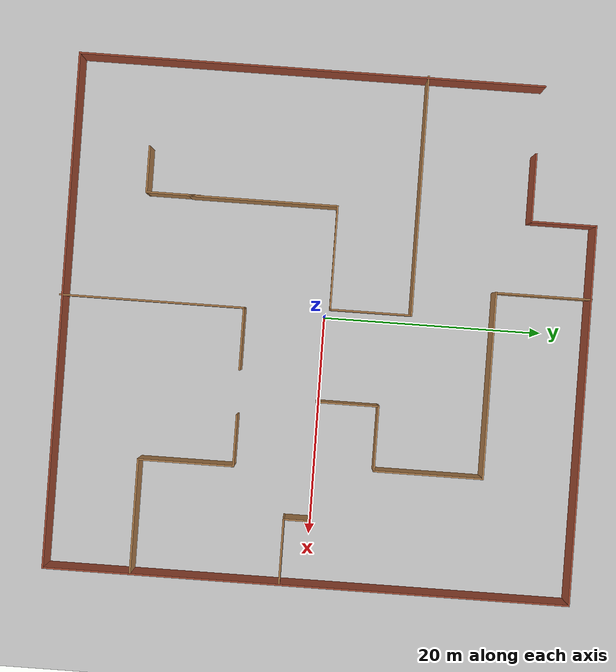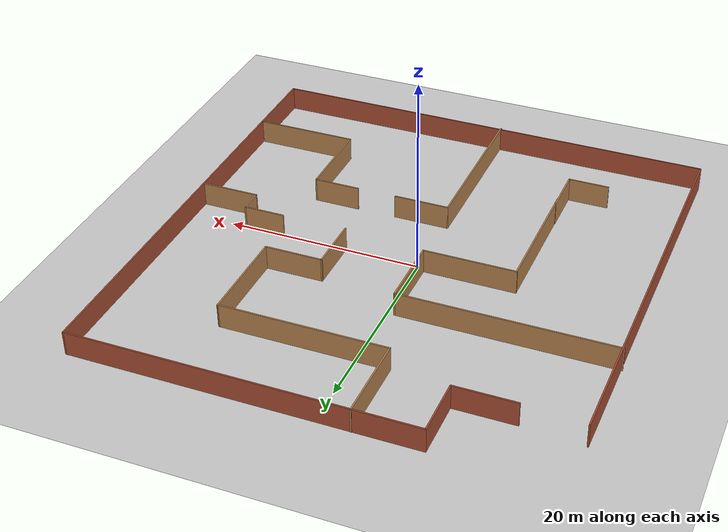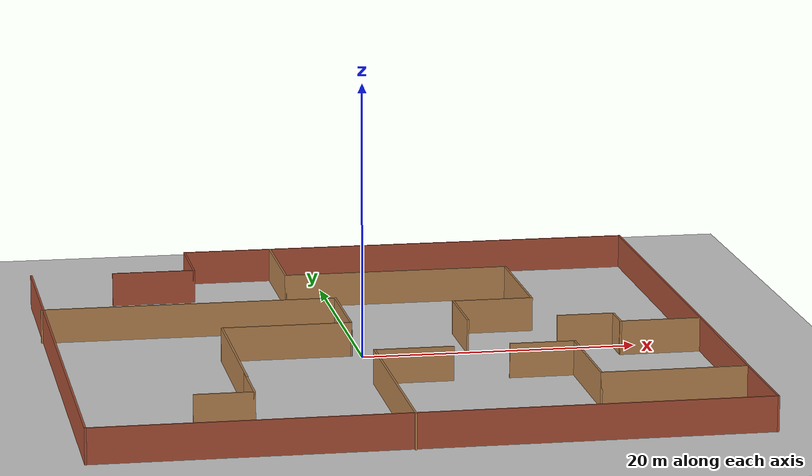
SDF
<sdf version="1.4">
 <world name="default">
  <include><uri>model://ground_plane</uri></include>
  <include><uri>model://sun</uri></include>
  <include>
   <pose>1 0 0  0 0 0</pose>
   <uri>model:///home/mathias/catkin_yolo/src/heat_map/worlds/chosen_map</uri>
  </include>
 </world>
</sdf>

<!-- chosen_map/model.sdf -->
<sdf version='1.6'>
  <model name='chosen_map'>
    <pose frame=''>7.96843 -0.244102 0 0 -0 0</pose>
    <link name='Wall_23'>
      <collision name='Wall_23_Collision'>
        <geometry>
          <box>
            <size>42.25 0.15 2.5</size>
          </box>
        </geometry>
        <pose frame=''>0 0 1.25 0 -0 0</pose>
      </collision>
      <visual name='Wall_23_Visual'>
        <pose frame=''>0 0 1.25 0 -0 0</pose>
        <geometry>
          <box>
            <size>42.25 0.15 2.5</size>
          </box>
        </geometry>
        <material>
          <script>
            <uri>file://media/materials/scripts/gazebo.material</uri>
            <name>Gazebo/Bricks</name>
          </script>
          <ambient>1 1 1 1</ambient>
        </material>
        <meta>
          <layer>0</layer>
        </meta>
      </visual>
      <pose frame=''>-23.2389 -2.67673 0 0 -0 -1.5708</pose>
    </link>
    <link name='Wall_24'>
      <collision name='Wall_24_Collision'>
        <geometry>
          <box>
            <size>46.75 0.15 2.5</size>
          </box>
        </geometry>
        <pose frame=''>0 0 1.25 0 -0 0</pose>
      </collision>
      <visual name='Wall_24_Visual'>
        <pose frame=''>0 0 1.25 0 -0 0</pose>
        <geometry>
          <box>
            <size>46.75 0.15 2.5</size>
          </box>
        </geometry>
        <material>
          <script>
            <uri>file://media/materials/scripts/gazebo.material</uri>
            <name>Gazebo/Bricks</name>
          </script>
          <ambient>1 1 1 1</ambient>
        </material>
        <meta>
          <layer>0</layer>
        </meta>
      </visual>
      <pose frame=''>0.061133 -23.7267 0 0 -0 0</pose>
    </link>
    <link name='Wall_25'>
      <collision name='Wall_25_Collision'>
        <geometry>
          <box>
            <size>47.75 0.15 2.5</size>
          </box>
        </geometry>
        <pose frame=''>0 0 1.25 0 -0 0</pose>
      </collision>
      <visual name='Wall_25_Visual'>
        <pose frame=''>0 0 1.25 0 -0 0</pose>
        <geometry>
          <box>
            <size>47.75 0.15 2.5</size>
          </box>
        </geometry>
        <material>
          <script>
            <uri>file://media/materials/scripts/gazebo.material</uri>
            <name>Gazebo/Bricks</name>
          </script>
          <ambient>1 1 1 1</ambient>
        </material>
        <meta>
          <layer>0</layer>
        </meta>
      </visual>
      <pose frame=''>23.3611 0.073269 0 0 -0 1.5708</pose>
    </link>
    <link name='Wall_26'>
      <collision name='Wall_26_Collision'>
        <geometry>
          <box>
            <size>34.5 0.15 2.5</size>
          </box>
        </geometry>
        <pose frame=''>0 0 1.25 0 -0 0</pose>
      </collision>
      <visual name='Wall_26_Visual'>
        <pose frame=''>0 0 1.25 0 -0 0</pose>
        <geometry>
          <box>
            <size>34.5 0.15 2.5</size>
          </box>
        </geometry>
        <material>
          <script>
            <uri>file://media/materials/scripts/gazebo.material</uri>
            <name>Gazebo/Bricks</name>
          </script>
          <ambient>1 1 1 1</ambient>
        </material>
        <meta>
          <layer>0</layer>
        </meta>
      </visual>
      <pose frame=''>6.18613 23.8733 0 0 -0 3.14159</pose>
    </link>
    <link name='Wall_27'>
      <collision name='Wall_27_Collision'>
        <geometry>
          <box>
            <size>6 0.15 2.5</size>
          </box>
        </geometry>
        <pose frame=''>0 0 1.25 0 -0 0</pose>
      </collision>
      <visual name='Wall_27_Visual'>
        <pose frame=''>0 0 1.25 0 -0 0</pose>
        <geometry>
          <box>
            <size>6 0.15 2.5</size>
          </box>
        </geometry>
        <material>
          <script>
            <uri>file://media/materials/scripts/gazebo.material</uri>
            <name>Gazebo/Bricks</name>
          </script>
          <ambient>1 1 1 1</ambient>
        </material>
        <meta>
          <layer>0</layer>
        </meta>
      </visual>
      <pose frame=''>-10.9889 20.9483 0 0 -0 -1.5708</pose>
    </link>
    <link name='Wall_28'>
      <collision name='Wall_28_Collision'>
        <geometry>
          <box>
            <size>6.25 0.15 2.5</size>
          </box>
        </geometry>
        <pose frame=''>0 0 1.25 0 -0 0</pose>
      </collision>
      <visual name='Wall_28_Visual'>
        <pose frame=''>0 0 1.25 0 -0 0</pose>
        <geometry>
          <box>
            <size>6.25 0.15 2.5</size>
          </box>
        </geometry>
        <material>
          <script>
            <uri>file://media/materials/scripts/gazebo.material</uri>
            <name>Gazebo/Bricks</name>
          </script>
          <ambient>1 1 1 1</ambient>
        </material>
        <meta>
          <layer>0</layer>
        </meta>
      </visual>
      <pose frame=''>-14.0389 18.0233 0 0 -0 3.14159</pose>
    </link>
    <link name='Wall_30'>
      <collision name='Wall_30_Collision'>
        <geometry>
          <box>
            <size>21.75 0.15 2.5</size>
          </box>
        </geometry>
        <pose frame=''>0 0 1.25 0 -0 0</pose>
      </collision>
      <visual name='Wall_30_Visual'>
        <pose frame=''>0 0 1.25 0 -0 0</pose>
        <geometry>
          <box>
            <size>21.75 0.15 2.5</size>
          </box>
        </geometry>
        <material>
          <script>
            <uri>file://media/materials/scripts/gazebo.material</uri>
            <name>Gazebo/Wood</name>
          </script>
          <ambient>1 1 1 1</ambient>
        </material>
        <meta>
          <layer>0</layer>
        </meta>
      </visual>
      <pose frame=''>-12.5611 7.82006 0 0 -0 0</pose>
    </link>
    <link name='Wall_31'>
      <collision name='Wall_31_Collision'>
        <geometry>
          <box>
            <size>7.5 0.15 2.5</size>
          </box>
        </geometry>
        <pose frame=''>0 0 1.25 0 -0 0</pose>
      </collision>
      <visual name='Wall_31_Visual'>
        <pose frame=''>0 0 1.25 0 -0 0</pose>
        <geometry>
          <box>
            <size>7.5 0.15 2.5</size>
          </box>
        </geometry>
        <material>
          <script>
            <uri>file://media/materials/scripts/gazebo.material</uri>
            <name>Gazebo/Wood</name>
          </script>
          <ambient>1 1 1 1</ambient>
        </material>
        <meta>
          <layer>0</layer>
        </meta>
      </visual>
      <pose frame=''>-1.76114 4.14506 0 0 -0 -1.5708</pose>
    </link>
    <link name='Wall_32'>
      <collision name='Wall_32_Collision'>
        <geometry>
          <box>
            <size>9.5 0.15 2.5</size>
          </box>
        </geometry>
        <pose frame=''>0 0 1.25 0 -0 0</pose>
      </collision>
      <visual name='Wall_32_Visual'>
        <pose frame=''>0 0 1.25 0 -0 0</pose>
        <geometry>
          <box>
            <size>9.5 0.15 2.5</size>
          </box>
        </geometry>
        <material>
          <script>
            <uri>file://media/materials/scripts/gazebo.material</uri>
            <name>Gazebo/Wood</name>
          </script>
          <ambient>1 1 1 1</ambient>
        </material>
        <meta>
          <layer>0</layer>
        </meta>
      </visual>
      <pose frame=''>-6.43614 0.470065 0 0 -0 3.14159</pose>
    </link>
    <link name='Wall_33'>
      <collision name='Wall_33_Collision'>
        <geometry>
          <box>
            <size>13.5 0.15 2.5</size>
          </box>
        </geometry>
        <pose frame=''>0 0 1.25 0 -0 0</pose>
      </collision>
      <visual name='Wall_33_Visual'>
        <pose frame=''>0 0 1.25 0 -0 0</pose>
        <geometry>
          <box>
            <size>13.5 0.15 2.5</size>
          </box>
        </geometry>
        <material>
          <script>
            <uri>file://media/materials/scripts/gazebo.material</uri>
            <name>Gazebo/Wood</name>
          </script>
          <ambient>1 1 1 1</ambient>
        </material>
        <meta>
          <layer>0</layer>
        </meta>
      </visual>
      <pose frame=''>-11.1111 -6.20493 0 0 -0 -1.5708</pose>
    </link>
    <link name='Wall_35'>
      <collision name='Wall_35_Collision'>
        <geometry>
          <box>
            <size>16.75 0.15 2.5</size>
          </box>
        </geometry>
        <pose frame=''>0 0 1.25 0 -0 0</pose>
      </collision>
      <visual name='Wall_35_Visual'>
        <pose frame=''>0 0 1.25 0 -0 0</pose>
        <geometry>
          <box>
            <size>16.75 0.15 2.5</size>
          </box>
        </geometry>
        <material>
          <script>
            <uri>file://media/materials/scripts/gazebo.material</uri>
            <name>Gazebo/Wood</name>
          </script>
          <ambient>1 1 1 1</ambient>
        </material>
        <meta>
          <layer>0</layer>
        </meta>
      </visual>
      <pose frame=''>-1.35976 -15.6092 0 0 -0 1.5708</pose>
    </link>
    <link name='Wall_36'>
      <collision name='Wall_36_Collision'>
        <geometry>
          <box>
            <size>5.75 0.15 2.5</size>
          </box>
        </geometry>
        <pose frame=''>0 0 1.25 0 -0 0</pose>
      </collision>
      <visual name='Wall_36_Visual'>
        <pose frame=''>0 0 1.25 0 -0 0</pose>
        <geometry>
          <box>
            <size>5.75 0.15 2.5</size>
          </box>
        </geometry>
        <material>
          <script>
            <uri>file://media/materials/scripts/gazebo.material</uri>
            <name>Gazebo/Wood</name>
          </script>
          <ambient>1 1 1 1</ambient>
        </material>
        <meta>
          <layer>0</layer>
        </meta>
      </visual>
      <pose frame=''>1.44024 -7.3092 0 0 -0 0</pose>
    </link>
    <link name='Wall_38'>
      <collision name='Wall_38_Collision'>
        <geometry>
          <box>
            <size>4.75 0.15 2.5</size>
          </box>
        </geometry>
        <pose frame=''>0 0 1.25 0 -0 0</pose>
      </collision>
      <visual name='Wall_38_Visual'>
        <pose frame=''>0 0 1.25 0 -0 0</pose>
        <geometry>
          <box>
            <size>4.75 0.15 2.5</size>
          </box>
        </geometry>
        <material>
          <script>
            <uri>file://media/materials/scripts/gazebo.material</uri>
            <name>Gazebo/Wood</name>
          </script>
          <ambient>1 1 1 1</ambient>
        </material>
        <meta>
          <layer>0</layer>
        </meta>
      </visual>
      <pose frame=''>10.6804 -7.24275 0 0 -0 0</pose>
    </link>
    <link name='Wall_39'>
      <collision name='Wall_39_Collision'>
        <geometry>
          <box>
            <size>8.75 0.15 2.5</size>
          </box>
        </geometry>
        <pose frame=''>0 0 1.25 0 -0 0</pose>
      </collision>
      <visual name='Wall_39_Visual'>
        <pose frame=''>0 0 1.25 0 -0 0</pose>
        <geometry>
          <box>
            <size>8.75 0.15 2.5</size>
          </box>
        </geometry>
        <material>
          <script>
            <uri>file://media/materials/scripts/gazebo.material</uri>
            <name>Gazebo/Wood</name>
          </script>
          <ambient>1 1 1 1</ambient>
        </material>
        <meta>
          <layer>0</layer>
        </meta>
      </visual>
      <pose frame=''>12.9804 -11.5427 0 0 -0 -1.5708</pose>
    </link>
    <link name='Wall_40'>
      <collision name='Wall_40_Collision'>
        <geometry>
          <box>
            <size>10.5 0.15 2.5</size>
          </box>
        </geometry>
        <pose frame=''>0 0 1.25 0 -0 0</pose>
      </collision>
      <visual name='Wall_40_Visual'>
        <pose frame=''>0 0 1.25 0 -0 0</pose>
        <geometry>
          <box>
            <size>10.5 0.15 2.5</size>
          </box>
        </geometry>
        <material>
          <script>
            <uri>file://media/materials/scripts/gazebo.material</uri>
            <name>Gazebo/Wood</name>
          </script>
          <ambient>1 1 1 1</ambient>
        </material>
        <meta>
          <layer>0</layer>
        </meta>
      </visual>
      <pose frame=''>18.1554 -15.8427 0 0 -0 0</pose>
    </link>
    <link name='Wall_42'>
      <collision name='Wall_42_Collision'>
        <geometry>
          <box>
            <size>8.75 0.15 2.5</size>
          </box>
        </geometry>
        <pose frame=''>0 0 1.25 0 -0 0</pose>
      </collision>
      <visual name='Wall_42_Visual'>
        <pose frame=''>0 0 1.25 0 -0 0</pose>
        <geometry>
          <box>
            <size>8.75 0.15 2.5</size>
          </box>
        </geometry>
        <material>
          <script>
            <uri>file://media/materials/scripts/gazebo.material</uri>
            <name>Gazebo/Wood</name>
          </script>
          <ambient>1 1 1 1</ambient>
        </material>
        <meta>
          <layer>0</layer>
        </meta>
      </visual>
      <pose frame=''>-4.34651 19.6092 0 0 -0 -1.5708</pose>
    </link>
    <link name='Wall_43'>
      <collision name='Wall_43_Collision'>
        <geometry>
          <box>
            <size>17 0.15 2.5</size>
          </box>
        </geometry>
        <pose frame=''>0 0 1.25 0 -0 0</pose>
      </collision>
      <visual name='Wall_43_Visual'>
        <pose frame=''>0 0 1.25 0 -0 0</pose>
        <geometry>
          <box>
            <size>17 0.15 2.5</size>
          </box>
        </geometry>
        <material>
          <script>
            <uri>file://media/materials/scripts/gazebo.material</uri>
            <name>Gazebo/Wood</name>
          </script>
          <ambient>1 1 1 1</ambient>
        </material>
        <meta>
          <layer>0</layer>
        </meta>
      </visual>
      <pose frame=''>4.07849 15.3092 0 0 -0 0</pose>
    </link>
    <link name='Wall_44'>
      <collision name='Wall_44_Collision'>
        <geometry>
          <box>
            <size>10 0.15 2.5</size>
          </box>
        </geometry>
        <pose frame=''>0 0 1.25 0 -0 0</pose>
      </collision>
      <visual name='Wall_44_Visual'>
        <pose frame=''>0 0 1.25 0 -0 0</pose>
        <geometry>
          <box>
            <size>10 0.15 2.5</size>
          </box>
        </geometry>
        <material>
          <script>
            <uri>file://media/materials/scripts/gazebo.material</uri>
            <name>Gazebo/Wood</name>
          </script>
          <ambient>1 1 1 1</ambient>
        </material>
        <meta>
          <layer>0</layer>
        </meta>
      </visual>
      <pose frame=''>12.5035 10.3842 0 0 -0 -1.5708</pose>
    </link>
    <link name='Wall_45'>
      <collision name='Wall_45_Collision'>
        <geometry>
          <box>
            <size>6 0.15 2.5</size>
          </box>
        </geometry>
        <pose frame=''>0 0 1.25 0 -0 0</pose>
      </collision>
      <visual name='Wall_45_Visual'>
        <pose frame=''>0 0 1.25 0 -0 0</pose>
        <geometry>
          <box>
            <size>6 0.15 2.5</size>
          </box>
        </geometry>
        <material>
          <script>
            <uri>file://media/materials/scripts/gazebo.material</uri>
            <name>Gazebo/Wood</name>
          </script>
          <ambient>1 1 1 1</ambient>
        </material>
        <meta>
          <layer>0</layer>
        </meta>
      </visual>
      <pose frame=''>9.57849 5.4592 0 0 -0 3.14159</pose>
    </link>
    <link name='Wall_46'>
      <collision name='Wall_46_Collision'>
        <geometry>
          <box>
            <size>5.75 0.15 2.5</size>
          </box>
        </geometry>
        <pose frame=''>0 0 1.25 0 -0 0</pose>
      </collision>
      <visual name='Wall_46_Visual'>
        <pose frame=''>0 0 1.25 0 -0 0</pose>
        <geometry>
          <box>
            <size>5.75 0.15 2.5</size>
          </box>
        </geometry>
        <material>
          <script>
            <uri>file://media/materials/scripts/gazebo.material</uri>
            <name>Gazebo/Wood</name>
          </script>
          <ambient>1 1 1 1</ambient>
        </material>
        <meta>
          <layer>0</layer>
        </meta>
      </visual>
      <pose frame=''>6.65349 2.65921 0 0 -0 -1.5708</pose>
    </link>
    <link name='Wall_48'>
      <collision name='Wall_48_Collision'>
        <geometry>
          <box>
            <size>6 0.15 2.5</size>
          </box>
        </geometry>
        <pose frame=''>0 0 1.25 0 -0 0</pose>
      </collision>
      <visual name='Wall_48_Visual'>
        <pose frame=''>0 0 1.25 0 -0 0</pose>
        <geometry>
          <box>
            <size>6 0.15 2.5</size>
          </box>
        </geometry>
        <material>
          <script>
            <uri>file://media/materials/scripts/gazebo.material</uri>
            <name>Gazebo/Wood</name>
          </script>
          <ambient>1 1 1 1</ambient>
        </material>
        <meta>
          <layer>0</layer>
        </meta>
      </visual>
      <pose frame=''>20.358 -2.35128 0 0 -0 3.14159</pose>
    </link>
    <link name='Wall_49'>
      <collision name='Wall_49_Collision'>
        <geometry>
          <box>
            <size>2.5 0.15 2.5</size>
          </box>
        </geometry>
        <pose frame=''>0 0 1.25 0 -0 0</pose>
      </collision>
      <visual name='Wall_49_Visual'>
        <pose frame=''>0 0 1.25 0 -0 0</pose>
        <geometry>
          <box>
            <size>2.5 0.15 2.5</size>
          </box>
        </geometry>
        <material>
          <script>
            <uri>file://media/materials/scripts/gazebo.material</uri>
            <name>Gazebo/Wood</name>
          </script>
          <ambient>1 1 1 1</ambient>
        </material>
        <meta>
          <layer>0</layer>
        </meta>
      </visual>
      <pose frame=''>17.433 -1.17628 0 0 -0 1.5708</pose>
    </link>
    <link name='Wall_50'>
      <collision name='Wall_50_Collision'>
        <geometry>
          <box>
            <size>4.25 0.15 2.5</size>
          </box>
        </geometry>
        <pose frame=''>0 0 1.25 0 -0 0</pose>
      </collision>
      <visual name='Wall_50_Visual'>
        <pose frame=''>0 0 1.25 0 -0 0</pose>
        <geometry>
          <box>
            <size>4.25 0.15 2.5</size>
          </box>
        </geometry>
        <material>
          <script>
            <uri>file://media/materials/scripts/gazebo.material</uri>
            <name>Gazebo/Wood</name>
          </script>
          <ambient>1 1 1 1</ambient>
        </material>
        <meta>
          <layer>0</layer>
        </meta>
      </visual>
      <pose frame=''>15.383 -0.001283 0 0 -0 3.14159</pose>
    </link>
    <link name='Wall_53'>
      <collision name='Wall_53_Collision'>
        <geometry>
          <box>
            <size>5 0.15 2.5</size>
          </box>
        </geometry>
        <pose frame=''>0 0 1.25 0 -0 0</pose>
      </collision>
      <visual name='Wall_53_Visual'>
        <pose frame=''>0 0 1.25 0 -0 0</pose>
        <geometry>
          <box>
            <size>5 0.15 2.5</size>
          </box>
        </geometry>
        <material>
          <script>
            <uri>file://media/materials/scripts/gazebo.material</uri>
            <name>Gazebo/Wood</name>
          </script>
          <ambient>1 1 1 1</ambient>
        </material>
        <meta>
          <layer>0</layer>
        </meta>
      </visual>
      <pose frame=''>-11.1487 -14.4083 0 0 -0 -1.5708</pose>
    </link>
    <link name='Wall_54'>
      <collision name='Wall_54_Collision'>
        <geometry>
          <box>
            <size>4.25 0.15 2.5</size>
          </box>
        </geometry>
        <pose frame=''>0 0 1.25 0 -0 0</pose>
      </collision>
      <visual name='Wall_54_Visual'>
        <pose frame=''>0 0 1.25 0 -0 0</pose>
        <geometry>
          <box>
            <size>4.25 0.15 2.5</size>
          </box>
        </geometry>
        <material>
          <script>
            <uri>file://media/materials/scripts/gazebo.material</uri>
            <name>Gazebo/Wood</name>
          </script>
          <ambient>1 1 1 1</ambient>
        </material>
        <meta>
          <layer>0</layer>
        </meta>
      </visual>
      <pose frame=''>-13.1987 -16.8333 0 0 -0 3.14159</pose>
    </link>
    <static>1</static>
  </model>
</sdf>
